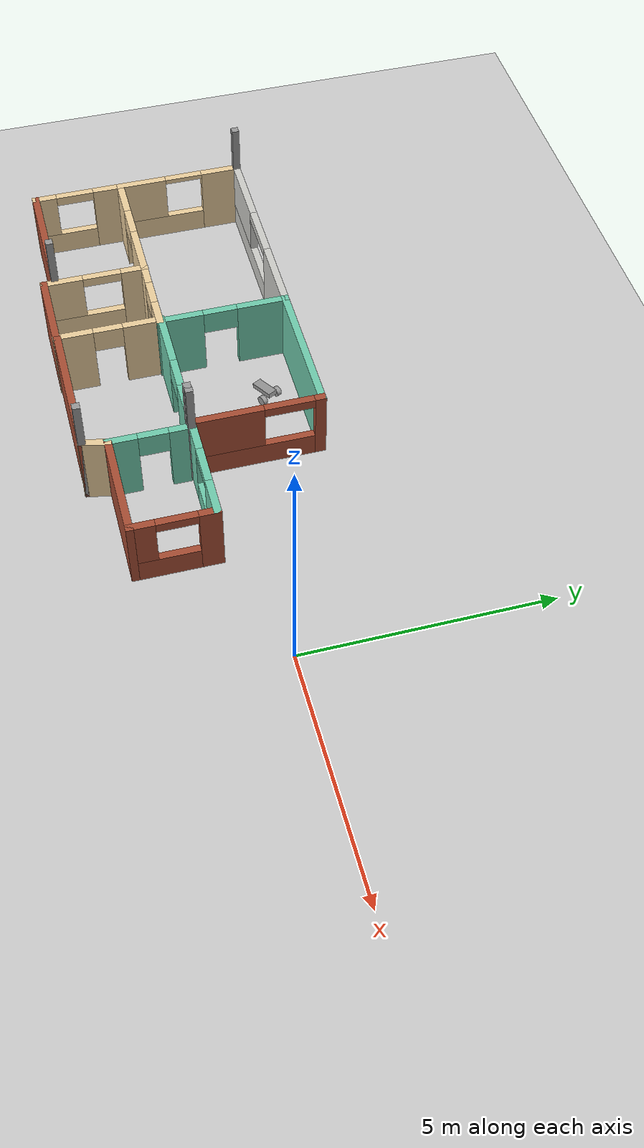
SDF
<sdf version="1.6">
 <world name="default">
  <model name="ground_plane">
   <static>1</static>
   <link name="link">
    <collision name="collision">
     <geometry><plane><normal>0 0 1</normal><size>100 100</size></plane></geometry>
     <surface><friction><ode><mu>100</mu><mu2>50</mu2></ode></friction></surface>
    </collision>
    <visual name="visual">
     <cast_shadows>0</cast_shadows>
     <geometry><plane><normal>0 0 1</normal><size>100 100</size></plane></geometry>
     <material>
      <script><uri>file://media/materials/scripts/gazebo.material</uri><name>Gazebo/Grey</name></script>
     </material>
    </visual>
   </link>
  </model>
  <model name="project1myapmt">
   <pose>-7.14968 -0.584035 0 0 -0 0</pose>
   <link name="Wall_0">
    <pose>-4.7145 1.0455 0 0 0 -1.5708</pose>
    <visual name="Wall_0_Visual_0">
     <pose>-0.936104 0 0.75 0 -0 0</pose>
     <geometry><box><size>0.877792 0.15 1.5</size></box></geometry>
     <material>
      <script><uri>file://media/materials/scripts/gazebo.material</uri><name>Gazebo/Grey</name></script>
      <ambient>0.921569 0.807843 0.615686 1</ambient>
     </material>
     <meta><layer>0</layer></meta>
    </visual>
    <collision name="Wall_0_Collision_0">
     <geometry><box><size>0.877792 0.15 1.5</size></box></geometry>
     <pose>-0.936104 0 0.75 0 -0 0</pose>
    </collision>
    <visual name="Wall_0_Visual_1">
     <pose>0.438896 0 0.25 0 -0 0</pose>
     <geometry><box><size>1.87221 0.15 0.5</size></box></geometry>
     <material>
      <script><uri>file://media/materials/scripts/gazebo.material</uri><name>Gazebo/Grey</name></script>
      <ambient>0.921569 0.807843 0.615686 1</ambient>
     </material>
     <meta><layer>0</layer></meta>
    </visual>
    <collision name="Wall_0_Collision_1">
     <geometry><box><size>1.87221 0.15 0.5</size></box></geometry>
     <pose>0.438896 0 0.25 0 -0 0</pose>
    </collision>
    <visual name="Wall_0_Visual_2">
     <pose>0.838896 0 1 0 -0 0</pose>
     <geometry><box><size>1.07221 0.15 1</size></box></geometry>
     <material>
      <script><uri>file://media/materials/scripts/gazebo.material</uri><name>Gazebo/Grey</name></script>
      <ambient>0.921569 0.807843 0.615686 1</ambient>
     </material>
     <meta><layer>0</layer></meta>
    </visual>
    <collision name="Wall_0_Collision_2">
     <geometry><box><size>1.07221 0.15 1</size></box></geometry>
     <pose>0.838896 0 1 0 -0 0</pose>
    </collision>
    <visual name="Wall_0_Visual_3">
     <pose>-0.097208 0 1.45 0 -0 0</pose>
     <geometry><box><size>0.8 0.15 0.1</size></box></geometry>
     <material>
      <script><uri>file://media/materials/scripts/gazebo.material</uri><name>Gazebo/Grey</name></script>
      <ambient>0.921569 0.807843 0.615686 1</ambient>
     </material>
     <meta><layer>0</layer></meta>
    </visual>
    <collision name="Wall_0_Collision_3">
     <geometry><box><size>0.8 0.15 0.1</size></box></geometry>
     <pose>-0.097208 0 1.45 0 -0 0</pose>
    </collision>
   </link>
   <link name="Wall_1">
    <pose>-2.5395 -0.2545 0 0 -0 0</pose>
    <visual name="Wall_1_Visual_0">
     <pose>-1.7861 0 0.75 0 -0 0</pose>
     <geometry><box><size>0.927792 0.15 1.5</size></box></geometry>
     <material>
      <script><uri>file://media/materials/scripts/gazebo.material</uri><name>Gazebo/Grey</name></script>
      <ambient>0.921569 0.807843 0.615686 1</ambient>
     </material>
     <meta><layer>0</layer></meta>
    </visual>
    <collision name="Wall_1_Collision_0">
     <geometry><box><size>0.927792 0.15 1.5</size></box></geometry>
     <pose>-1.7861 0 0.75 0 -0 0</pose>
    </collision>
    <visual name="Wall_1_Visual_1">
     <pose>0.197757 0 0.75 0 -0 0</pose>
     <geometry><box><size>1.63993 0.15 1.5</size></box></geometry>
     <material>
      <script><uri>file://media/materials/scripts/gazebo.material</uri><name>Gazebo/Grey</name></script>
      <ambient>0.921569 0.807843 0.615686 1</ambient>
     </material>
     <meta><layer>0</layer></meta>
    </visual>
    <collision name="Wall_1_Collision_1">
     <geometry><box><size>1.63993 0.15 1.5</size></box></geometry>
     <pose>0.197757 0 0.75 0 -0 0</pose>
    </collision>
    <visual name="Wall_1_Visual_2">
     <pose>1.93386 0 0.75 0 -0 0</pose>
     <geometry><box><size>0.632278 0.15 1.5</size></box></geometry>
     <material>
      <script><uri>file://media/materials/scripts/gazebo.material</uri><name>Gazebo/Grey</name></script>
      <ambient>0.921569 0.807843 0.615686 1</ambient>
     </material>
     <meta><layer>0</layer></meta>
    </visual>
    <collision name="Wall_1_Collision_2">
     <geometry><box><size>0.632278 0.15 1.5</size></box></geometry>
     <pose>1.93386 0 0.75 0 -0 0</pose>
    </collision>
    <visual name="Wall_1_Visual_3">
     <pose>-0.972208 0 1.25 0 -0 0</pose>
     <geometry><box><size>0.7 0.15 0.5</size></box></geometry>
     <material>
      <script><uri>file://media/materials/scripts/gazebo.material</uri><name>Gazebo/Grey</name></script>
      <ambient>0.921569 0.807843 0.615686 1</ambient>
     </material>
     <meta><layer>0</layer></meta>
    </visual>
    <collision name="Wall_1_Collision_3">
     <geometry><box><size>0.7 0.15 0.5</size></box></geometry>
     <pose>-0.972208 0 1.25 0 -0 0</pose>
    </collision>
    <visual name="Wall_1_Visual_4">
     <pose>1.31772 0 1.25 0 -0 0</pose>
     <geometry><box><size>0.6 0.15 0.5</size></box></geometry>
     <material>
      <script><uri>file://media/materials/scripts/gazebo.material</uri><name>Gazebo/Grey</name></script>
      <ambient>0.921569 0.807843 0.615686 1</ambient>
     </material>
     <meta><layer>0</layer></meta>
    </visual>
    <collision name="Wall_1_Collision_4">
     <geometry><box><size>0.6 0.15 0.5</size></box></geometry>
     <pose>1.31772 0 1.25 0 -0 0</pose>
    </collision>
   </link>
   <link name="Wall_10">
    <pose>4.7145 -1.034 0 0 0 -1.5708</pose>
    <visual name="Wall_10_Visual_0">
     <pose>-0.67359 0 0.75 0 -0 0</pose>
     <geometry><box><size>0.425819 0.15 1.5</size></box></geometry>
     <material>
      <script><uri>file://media/materials/scripts/gazebo.material</uri><name>Gazebo/Bricks</name></script>
      <ambient>0.435294 0.796078 0.67451 1</ambient>
     </material>
     <meta><layer>0</layer></meta>
    </visual>
    <collision name="Wall_10_Collision_0">
     <geometry><box><size>0.425819 0.15 1.5</size></box></geometry>
     <pose>-0.67359 0 0.75 0 -0 0</pose>
    </collision>
    <visual name="Wall_10_Visual_1">
     <pose>0.21291 0 0.25 0 -0 0</pose>
     <geometry><box><size>1.34718 0.15 0.5</size></box></geometry>
     <material>
      <script><uri>file://media/materials/scripts/gazebo.material</uri><name>Gazebo/Bricks</name></script>
      <ambient>0.435294 0.796078 0.67451 1</ambient>
     </material>
     <meta><layer>0</layer></meta>
    </visual>
    <collision name="Wall_10_Collision_1">
     <geometry><box><size>1.34718 0.15 0.5</size></box></geometry>
     <pose>0.21291 0 0.25 0 -0 0</pose>
    </collision>
    <visual name="Wall_10_Visual_2">
     <pose>0.61291 0 1 0 -0 0</pose>
     <geometry><box><size>0.547181 0.15 1</size></box></geometry>
     <material>
      <script><uri>file://media/materials/scripts/gazebo.material</uri><name>Gazebo/Bricks</name></script>
      <ambient>0.435294 0.796078 0.67451 1</ambient>
     </material>
     <meta><layer>0</layer></meta>
    </visual>
    <collision name="Wall_10_Collision_2">
     <geometry><box><size>0.547181 0.15 1</size></box></geometry>
     <pose>0.61291 0 1 0 -0 0</pose>
    </collision>
    <visual name="Wall_10_Visual_3">
     <pose>-0.060681 0 1.4 0 -0 0</pose>
     <geometry><box><size>0.8 0.15 0.2</size></box></geometry>
     <material>
      <script><uri>file://media/materials/scripts/gazebo.material</uri><name>Gazebo/Bricks</name></script>
      <ambient>0.435294 0.796078 0.67451 1</ambient>
     </material>
     <meta><layer>0</layer></meta>
    </visual>
    <collision name="Wall_10_Collision_3">
     <geometry><box><size>0.8 0.15 0.2</size></box></geometry>
     <pose>-0.060681 0 1.4 0 -0 0</pose>
    </collision>
   </link>
   <link name="Wall_11">
    <collision name="Wall_11_Collision">
     <geometry><box><size>2.273 0.15 1.5</size></box></geometry>
     <pose>0 0 0.75 0 -0 0</pose>
    </collision>
    <visual name="Wall_11_Visual">
     <pose>0 0 0.75 0 -0 0</pose>
     <geometry><box><size>2.273 0.15 1.5</size></box></geometry>
     <material>
      <script><uri>file://media/materials/scripts/gazebo.material</uri><name>Gazebo/Bricks</name></script>
      <ambient>0.435294 0.796078 0.67451 1</ambient>
     </material>
     <meta><layer>0</layer></meta>
    </visual>
    <pose>3.653 -1.8455 0 0 -0 3.14159</pose>
   </link>
   <link name="Wall_12">
    <pose>2.5915 -1.0455 0 0 -0 1.5708</pose>
    <visual name="Wall_12_Visual_0">
     <pose>-0.55759 0 0.75 0 -0 0</pose>
     <geometry><box><size>0.634821 0.15 1.5</size></box></geometry>
     <material>
      <script><uri>file://media/materials/scripts/gazebo.material</uri><name>Gazebo/Grey</name></script>
      <ambient>0.435294 0.796078 0.67451 1</ambient>
     </material>
     <meta><layer>0</layer></meta>
    </visual>
    <collision name="Wall_12_Collision_0">
     <geometry><box><size>0.634821 0.15 1.5</size></box></geometry>
     <pose>-0.55759 0 0.75 0 -0 0</pose>
    </collision>
    <visual name="Wall_12_Visual_1">
     <pose>0.61741 0 0.75 0 -0 0</pose>
     <geometry><box><size>0.515179 0.15 1.5</size></box></geometry>
     <material>
      <script><uri>file://media/materials/scripts/gazebo.material</uri><name>Gazebo/Grey</name></script>
      <ambient>0.435294 0.796078 0.67451 1</ambient>
     </material>
     <meta><layer>0</layer></meta>
    </visual>
    <collision name="Wall_12_Collision_1">
     <geometry><box><size>0.515179 0.15 1.5</size></box></geometry>
     <pose>0.61741 0 0.75 0 -0 0</pose>
    </collision>
    <visual name="Wall_12_Visual_2">
     <pose>0.059821 0 1.25 0 -0 0</pose>
     <geometry><box><size>0.6 0.15 0.5</size></box></geometry>
     <material>
      <script><uri>file://media/materials/scripts/gazebo.material</uri><name>Gazebo/Grey</name></script>
      <ambient>0.435294 0.796078 0.67451 1</ambient>
     </material>
     <meta><layer>0</layer></meta>
    </visual>
    <collision name="Wall_12_Collision_2">
     <geometry><box><size>0.6 0.15 0.5</size></box></geometry>
     <pose>0.059821 0 1.25 0 -0 0</pose>
    </collision>
   </link>
   <link name="Wall_13">
    <collision name="Wall_13_Collision">
     <geometry><box><size>0.15 0.15 2.5</size></box></geometry>
     <pose>0 0 1.25 0 -0 0</pose>
    </collision>
    <visual name="Wall_13_Visual">
     <pose>0 0 1.25 0 -0 0</pose>
     <geometry><box><size>0.15 0.15 2.5</size></box></geometry>
     <material>
      <script><uri>file://media/materials/scripts/gazebo.material</uri><name>Gazebo/Grey</name></script>
      <ambient>1 1 1 1</ambient>
     </material>
     <meta><layer>0</layer></meta>
    </visual>
    <pose>2.5915 -0.2455 0 0 -0 0</pose>
   </link>
   <link name="Wall_15">
    <collision name="Wall_15_Collision">
     <geometry><box><size>3 0.15 1.5</size></box></geometry>
     <pose>0 0 0.75 0 -0 0</pose>
    </collision>
    <visual name="Wall_15_Visual">
     <pose>0 0 0.75 0 -0 0</pose>
     <geometry><box><size>3 0.15 1.5</size></box></geometry>
     <material>
      <script><uri>file://media/materials/scripts/gazebo.material</uri><name>Gazebo/Grey</name></script>
      <ambient>0.435294 0.796078 0.67451 1</ambient>
     </material>
     <meta><layer>0</layer></meta>
    </visual>
    <pose>1.0605 2.3455 0 0 -0 0</pose>
   </link>
   <link name="Wall_16">
    <pose>2.4855 1.0455 0 0 0 -1.5708</pose>
    <visual name="Wall_16_Visual_0">
     <pose>-1.26367 0 0.75 0 -0 0</pose>
     <geometry><box><size>0.222657 0.15 1.5</size></box></geometry>
     <material>
      <script><uri>file://media/materials/scripts/gazebo.material</uri><name>Gazebo/Bricks</name></script>
      <ambient>0.435294 0.796078 0.67451 1</ambient>
     </material>
     <meta><layer>0</layer></meta>
    </visual>
    <collision name="Wall_16_Collision_0">
     <geometry><box><size>0.222657 0.15 1.5</size></box></geometry>
     <pose>-1.26367 0 0.75 0 -0 0</pose>
    </collision>
    <visual name="Wall_16_Visual_1">
     <pose>0.111329 0 0.25 0 -0 0</pose>
     <geometry><box><size>2.52734 0.15 0.5</size></box></geometry>
     <material>
      <script><uri>file://media/materials/scripts/gazebo.material</uri><name>Gazebo/Bricks</name></script>
      <ambient>0.435294 0.796078 0.67451 1</ambient>
     </material>
     <meta><layer>0</layer></meta>
    </visual>
    <collision name="Wall_16_Collision_1">
     <geometry><box><size>2.52734 0.15 0.5</size></box></geometry>
     <pose>0.111329 0 0.25 0 -0 0</pose>
    </collision>
    <visual name="Wall_16_Visual_2">
     <pose>0.611329 0 1 0 -0 0</pose>
     <geometry><box><size>1.52734 0.15 1</size></box></geometry>
     <material>
      <script><uri>file://media/materials/scripts/gazebo.material</uri><name>Gazebo/Bricks</name></script>
      <ambient>0.435294 0.796078 0.67451 1</ambient>
     </material>
     <meta><layer>0</layer></meta>
    </visual>
    <collision name="Wall_16_Collision_2">
     <geometry><box><size>1.52734 0.15 1</size></box></geometry>
     <pose>0.611329 0 1 0 -0 0</pose>
    </collision>
    <visual name="Wall_16_Visual_3">
     <pose>-0.652343 0 1.4 0 -0 0</pose>
     <geometry><box><size>1 0.15 0.2</size></box></geometry>
     <material>
      <script><uri>file://media/materials/scripts/gazebo.material</uri><name>Gazebo/Bricks</name></script>
      <ambient>0.435294 0.796078 0.67451 1</ambient>
     </material>
     <meta><layer>0</layer></meta>
    </visual>
    <collision name="Wall_16_Collision_3">
     <geometry><box><size>1 0.15 0.2</size></box></geometry>
     <pose>-0.652343 0 1.4 0 -0 0</pose>
    </collision>
   </link>
   <link name="Wall_17">
    <collision name="Wall_17_Collision">
     <geometry><box><size>0.15 0.15 2.5</size></box></geometry>
     <pose>0 0 1.25 0 -0 0</pose>
    </collision>
    <visual name="Wall_17_Visual">
     <pose>0 0 1.25 0 -0 0</pose>
     <geometry><box><size>0.15 0.15 2.5</size></box></geometry>
     <material>
      <script><uri>file://media/materials/scripts/gazebo.material</uri><name>Gazebo/Grey</name></script>
      <ambient>1 1 1 1</ambient>
     </material>
     <meta><layer>0</layer></meta>
    </visual>
    <pose>2.4855 -0.2545 0 0 -0 0</pose>
   </link>
   <link name="Wall_19">
    <collision name="Wall_19_Collision">
     <geometry><box><size>3 0.15 1.5</size></box></geometry>
     <pose>0 0 0.75 0 -0 0</pose>
    </collision>
    <visual name="Wall_19_Visual">
     <pose>0 0 0.75 0 -0 0</pose>
     <geometry><box><size>3 0.15 1.5</size></box></geometry>
     <material>
      <script><uri>file://media/materials/scripts/gazebo.material</uri><name>Gazebo/Bricks</name></script>
      <ambient>0.921569 0.807843 0.615686 1</ambient>
     </material>
     <meta><layer>0</layer></meta>
    </visual>
    <pose>1.0595 -2.3265 0 0 -0 0</pose>
   </link>
   <link name="Wall_2">
    <pose>-0.3645 1.0455 0 0 -0 1.5708</pose>
    <visual name="Wall_2_Visual_0">
     <pose>-0.894853 0 0.75 0 -0 0</pose>
     <geometry><box><size>0.960294 0.15 1.5</size></box></geometry>
     <material>
      <script><uri>file://media/materials/scripts/gazebo.material</uri><name>Gazebo/Grey</name></script>
      <ambient>0.435294 0.796078 0.67451 1</ambient>
     </material>
     <meta><layer>0</layer></meta>
    </visual>
    <collision name="Wall_2_Collision_0">
     <geometry><box><size>0.960294 0.15 1.5</size></box></geometry>
     <pose>-0.894853 0 0.75 0 -0 0</pose>
    </collision>
    <visual name="Wall_2_Visual_1">
     <pose>0.830147 0 0.75 0 -0 0</pose>
     <geometry><box><size>1.08971 0.15 1.5</size></box></geometry>
     <material>
      <script><uri>file://media/materials/scripts/gazebo.material</uri><name>Gazebo/Grey</name></script>
      <ambient>0.435294 0.796078 0.67451 1</ambient>
     </material>
     <meta><layer>0</layer></meta>
    </visual>
    <collision name="Wall_2_Collision_1">
     <geometry><box><size>1.08971 0.15 1.5</size></box></geometry>
     <pose>0.830147 0 0.75 0 -0 0</pose>
    </collision>
    <visual name="Wall_2_Visual_2">
     <pose>-0.064706 0 1.25 0 -0 0</pose>
     <geometry><box><size>0.7 0.15 0.5</size></box></geometry>
     <material>
      <script><uri>file://media/materials/scripts/gazebo.material</uri><name>Gazebo/Grey</name></script>
      <ambient>0.435294 0.796078 0.67451 1</ambient>
     </material>
     <meta><layer>0</layer></meta>
    </visual>
    <collision name="Wall_2_Collision_2">
     <geometry><box><size>0.7 0.15 0.5</size></box></geometry>
     <pose>-0.064706 0 1.25 0 -0 0</pose>
    </collision>
   </link>
   <link name="Wall_20">
    <collision name="Wall_20_Collision">
     <geometry><box><size>0.15 0.15 2.5</size></box></geometry>
     <pose>0 0 1.25 0 -0 0</pose>
    </collision>
    <visual name="Wall_20_Visual">
     <pose>0 0 1.25 0 -0 0</pose>
     <geometry><box><size>0.15 0.15 2.5</size></box></geometry>
     <material>
      <script><uri>file://media/materials/scripts/gazebo.material</uri><name>Gazebo/Grey</name></script>
      <ambient>1 1 1 1</ambient>
     </material>
     <meta><layer>0</layer></meta>
    </visual>
    <pose>2.4845 -2.3265 0 0 -0 0</pose>
   </link>
   <link name="Wall_22">
    <pose>-4.7145 -1.1795 0 0 0 -1.5708</pose>
    <visual name="Wall_22_Visual_0">
     <pose>-0.658359 0 0.75 0 -0 0</pose>
     <geometry><box><size>0.683281 0.15 1.5</size></box></geometry>
     <material>
      <script><uri>file://media/materials/scripts/gazebo.material</uri><name>Gazebo/Grey</name></script>
      <ambient>0.921569 0.807843 0.615686 1</ambient>
     </material>
     <meta><layer>0</layer></meta>
    </visual>
    <collision name="Wall_22_Collision_0">
     <geometry><box><size>0.683281 0.15 1.5</size></box></geometry>
     <pose>-0.658359 0 0.75 0 -0 0</pose>
    </collision>
    <visual name="Wall_22_Visual_1">
     <pose>0.341641 0 0.25 0 -0 0</pose>
     <geometry><box><size>1.31672 0.15 0.5</size></box></geometry>
     <material>
      <script><uri>file://media/materials/scripts/gazebo.material</uri><name>Gazebo/Grey</name></script>
      <ambient>0.921569 0.807843 0.615686 1</ambient>
     </material>
     <meta><layer>0</layer></meta>
    </visual>
    <collision name="Wall_22_Collision_1">
     <geometry><box><size>1.31672 0.15 0.5</size></box></geometry>
     <pose>0.341641 0 0.25 0 -0 0</pose>
    </collision>
    <visual name="Wall_22_Visual_2">
     <pose>0.741641 0 1 0 -0 0</pose>
     <geometry><box><size>0.516719 0.15 1</size></box></geometry>
     <material>
      <script><uri>file://media/materials/scripts/gazebo.material</uri><name>Gazebo/Grey</name></script>
      <ambient>0.921569 0.807843 0.615686 1</ambient>
     </material>
     <meta><layer>0</layer></meta>
    </visual>
    <collision name="Wall_22_Collision_2">
     <geometry><box><size>0.516719 0.15 1</size></box></geometry>
     <pose>0.741641 0 1 0 -0 0</pose>
    </collision>
    <visual name="Wall_22_Visual_3">
     <pose>0.083281 0 1.4 0 -0 0</pose>
     <geometry><box><size>0.8 0.15 0.2</size></box></geometry>
     <material>
      <script><uri>file://media/materials/scripts/gazebo.material</uri><name>Gazebo/Grey</name></script>
      <ambient>0.921569 0.807843 0.615686 1</ambient>
     </material>
     <meta><layer>0</layer></meta>
    </visual>
    <collision name="Wall_22_Collision_3">
     <geometry><box><size>0.8 0.15 0.2</size></box></geometry>
     <pose>0.083281 0 1.4 0 -0 0</pose>
    </collision>
   </link>
   <link name="Wall_23">
    <collision name="Wall_23_Collision">
     <geometry><box><size>2.75 0.15 1.5</size></box></geometry>
     <pose>0 0 0.75 0 -0 0</pose>
    </collision>
    <visual name="Wall_23_Visual">
     <pose>0 0 0.75 0 -0 0</pose>
     <geometry><box><size>2.75 0.15 1.5</size></box></geometry>
     <material>
      <script><uri>file://media/materials/scripts/gazebo.material</uri><name>Gazebo/Bricks</name></script>
      <ambient>0.921569 0.807843 0.615686 1</ambient>
     </material>
     <meta><layer>0</layer></meta>
    </visual>
    <pose>-3.4145 -2.1045 0 0 -0 0</pose>
   </link>
   <link name="Wall_24">
    <collision name="Wall_24_Collision">
     <geometry><box><size>0.15 0.15 2.5</size></box></geometry>
     <pose>0 0 1.25 0 -0 0</pose>
    </collision>
    <visual name="Wall_24_Visual">
     <pose>0 0 1.25 0 -0 0</pose>
     <geometry><box><size>0.15 0.15 2.5</size></box></geometry>
     <material>
      <script><uri>file://media/materials/scripts/gazebo.material</uri><name>Gazebo/Grey</name></script>
      <ambient>1 1 1 1</ambient>
     </material>
     <meta><layer>0</layer></meta>
    </visual>
    <pose>-2.1145 -2.1045 0 0 -0 0</pose>
   </link>
   <link name="Wall_26">
    <collision name="Wall_26_Collision">
     <geometry><box><size>0.643652 0.15 1.5</size></box></geometry>
     <pose>0 0 0.75 0 -0 0</pose>
    </collision>
    <visual name="Wall_26_Visual">
     <pose>0 0 0.75 0 -0 0</pose>
     <geometry><box><size>0.643652 0.15 1.5</size></box></geometry>
     <material>
      <script><uri>file://media/materials/scripts/gazebo.material</uri><name>Gazebo/Grey</name></script>
      <ambient>0.921569 0.807843 0.615686 1</ambient>
     </material>
     <meta><layer>0</layer></meta>
    </visual>
    <pose>2.538 -2.086 0 0 0 -1.78968</pose>
   </link>
   <link name="Wall_27">
    <collision name="Wall_27_Collision">
     <geometry><box><size>0.15 0.15 2.5</size></box></geometry>
     <pose>0 0 1.25 0 -0 0</pose>
    </collision>
    <visual name="Wall_27_Visual">
     <pose>0 0 1.25 0 -0 0</pose>
     <geometry><box><size>0.15 0.15 2.5</size></box></geometry>
     <material>
      <script><uri>file://media/materials/scripts/gazebo.material</uri><name>Gazebo/Grey</name></script>
      <ambient>1 1 1 1</ambient>
     </material>
     <meta><layer>0</layer></meta>
    </visual>
    <pose>2.4845 -2.3265 0 0 -0 0</pose>
   </link>
   <link name="Wall_3">
    <pose>-2.5395 2.3455 0 0 -0 3.14159</pose>
    <visual name="Wall_3_Visual_0">
     <pose>-1.4362 0 0.75 0 -0 0</pose>
     <geometry><box><size>1.62759 0.15 1.5</size></box></geometry>
     <material>
      <script><uri>file://media/materials/scripts/gazebo.material</uri><name>Gazebo/CeilingTiled</name></script>
      <ambient>0.921569 0.807843 0.615686 1</ambient>
     </material>
     <meta><layer>0</layer></meta>
    </visual>
    <collision name="Wall_3_Collision_0">
     <geometry><box><size>1.62759 0.15 1.5</size></box></geometry>
     <pose>-1.4362 0 0.75 0 -0 0</pose>
    </collision>
    <visual name="Wall_3_Visual_1">
     <pose>0.813796 0 0.25 0 -0 0</pose>
     <geometry><box><size>2.87241 0.15 0.5</size></box></geometry>
     <material>
      <script><uri>file://media/materials/scripts/gazebo.material</uri><name>Gazebo/CeilingTiled</name></script>
      <ambient>0.921569 0.807843 0.615686 1</ambient>
     </material>
     <meta><layer>0</layer></meta>
    </visual>
    <collision name="Wall_3_Collision_1">
     <geometry><box><size>2.87241 0.15 0.5</size></box></geometry>
     <pose>0.813796 0 0.25 0 -0 0</pose>
    </collision>
    <visual name="Wall_3_Visual_2">
     <pose>1.4138 0 1 0 -0 0</pose>
     <geometry><box><size>1.67241 0.15 1</size></box></geometry>
     <material>
      <script><uri>file://media/materials/scripts/gazebo.material</uri><name>Gazebo/CeilingTiled</name></script>
      <ambient>0.921569 0.807843 0.615686 1</ambient>
     </material>
     <meta><layer>0</layer></meta>
    </visual>
    <collision name="Wall_3_Collision_2">
     <geometry><box><size>1.67241 0.15 1</size></box></geometry>
     <pose>1.4138 0 1 0 -0 0</pose>
    </collision>
    <visual name="Wall_3_Visual_3">
     <pose>-0.022408 0 1.4 0 -0 0</pose>
     <geometry><box><size>1.2 0.15 0.2</size></box></geometry>
     <material>
      <script><uri>file://media/materials/scripts/gazebo.material</uri><name>Gazebo/CeilingTiled</name></script>
      <ambient>0.921569 0.807843 0.615686 1</ambient>
     </material>
     <meta><layer>0</layer></meta>
    </visual>
    <collision name="Wall_3_Collision_3">
     <geometry><box><size>1.2 0.15 0.2</size></box></geometry>
     <pose>-0.022408 0 1.4 0 -0 0</pose>
    </collision>
   </link>
   <link name="Wall_4">
    <collision name="Wall_4_Collision">
     <geometry><box><size>0.15 0.15 2.5</size></box></geometry>
     <pose>0 0 1.25 0 -0 0</pose>
    </collision>
    <visual name="Wall_4_Visual">
     <pose>0 0 1.25 0 -0 0</pose>
     <geometry><box><size>0.15 0.15 2.5</size></box></geometry>
     <material>
      <script><uri>file://media/materials/scripts/gazebo.material</uri><name>Gazebo/Grey</name></script>
      <ambient>1 1 1 1</ambient>
     </material>
     <meta><layer>0</layer></meta>
    </visual>
    <pose>-4.7145 2.3455 0 0 -0 0</pose>
   </link>
   <link name="Wall_6">
    <pose>-2.0085 -1.2955 0 0 0 -1.5708</pose>
    <visual name="Wall_6_Visual_0">
     <pose>-0.836453 0 0.75 0 -0 0</pose>
     <geometry><box><size>0.577094 0.15 1.5</size></box></geometry>
     <material>
      <script><uri>file://media/materials/scripts/gazebo.material</uri><name>Gazebo/Grey</name></script>
      <ambient>0.921569 0.807843 0.615686 1</ambient>
     </material>
     <meta><layer>0</layer></meta>
    </visual>
    <collision name="Wall_6_Collision_0">
     <geometry><box><size>0.577094 0.15 1.5</size></box></geometry>
     <pose>-0.836453 0 0.75 0 -0 0</pose>
    </collision>
    <visual name="Wall_6_Visual_1">
     <pose>0.288547 0 0.25 0 -0 0</pose>
     <geometry><box><size>1.67291 0.15 0.5</size></box></geometry>
     <material>
      <script><uri>file://media/materials/scripts/gazebo.material</uri><name>Gazebo/Grey</name></script>
      <ambient>0.921569 0.807843 0.615686 1</ambient>
     </material>
     <meta><layer>0</layer></meta>
    </visual>
    <collision name="Wall_6_Collision_1">
     <geometry><box><size>1.67291 0.15 0.5</size></box></geometry>
     <pose>0.288547 0 0.25 0 -0 0</pose>
    </collision>
    <visual name="Wall_6_Visual_2">
     <pose>0.688547 0 1 0 -0 0</pose>
     <geometry><box><size>0.872906 0.15 1</size></box></geometry>
     <material>
      <script><uri>file://media/materials/scripts/gazebo.material</uri><name>Gazebo/Grey</name></script>
      <ambient>0.921569 0.807843 0.615686 1</ambient>
     </material>
     <meta><layer>0</layer></meta>
    </visual>
    <collision name="Wall_6_Collision_2">
     <geometry><box><size>0.872906 0.15 1</size></box></geometry>
     <pose>0.688547 0 1 0 -0 0</pose>
    </collision>
    <visual name="Wall_6_Visual_3">
     <pose>-0.147906 0 1.4 0 -0 0</pose>
     <geometry><box><size>0.8 0.15 0.2</size></box></geometry>
     <material>
      <script><uri>file://media/materials/scripts/gazebo.material</uri><name>Gazebo/Grey</name></script>
      <ambient>0.921569 0.807843 0.615686 1</ambient>
     </material>
     <meta><layer>0</layer></meta>
    </visual>
    <collision name="Wall_6_Collision_3">
     <geometry><box><size>0.8 0.15 0.2</size></box></geometry>
     <pose>-0.147906 0 1.4 0 -0 0</pose>
    </collision>
   </link>
   <link name="Wall_7">
    <collision name="Wall_7_Collision">
     <geometry><box><size>1.75 0.15 1.5</size></box></geometry>
     <pose>0 0 0.75 0 -0 0</pose>
    </collision>
    <visual name="Wall_7_Visual">
     <pose>0 0 0.75 0 -0 0</pose>
     <geometry><box><size>1.75 0.15 1.5</size></box></geometry>
     <material>
      <script><uri>file://media/materials/scripts/gazebo.material</uri><name>Gazebo/Bricks</name></script>
      <ambient>0.921569 0.807843 0.615686 1</ambient>
     </material>
     <meta><layer>0</layer></meta>
    </visual>
    <pose>-1.2085 -2.3455 0 0 -0 0</pose>
   </link>
   <link name="Wall_8">
    <pose>-0.4085 -1.284 0 0 -0 1.5708</pose>
    <visual name="Wall_8_Visual_0">
     <pose>-0.730771 0 0.75 0 -0 0</pose>
     <geometry><box><size>0.811458 0.15 1.5</size></box></geometry>
     <material>
      <script><uri>file://media/materials/scripts/gazebo.material</uri><name>Gazebo/Grey</name></script>
      <ambient>0.921569 0.807843 0.615686 1</ambient>
     </material>
     <meta><layer>0</layer></meta>
    </visual>
    <collision name="Wall_8_Collision_0">
     <geometry><box><size>0.811458 0.15 1.5</size></box></geometry>
     <pose>-0.730771 0 0.75 0 -0 0</pose>
    </collision>
    <visual name="Wall_8_Visual_1">
     <pose>0.705729 0 0.75 0 -0 0</pose>
     <geometry><box><size>0.861542 0.15 1.5</size></box></geometry>
     <material>
      <script><uri>file://media/materials/scripts/gazebo.material</uri><name>Gazebo/Grey</name></script>
      <ambient>0.921569 0.807843 0.615686 1</ambient>
     </material>
     <meta><layer>0</layer></meta>
    </visual>
    <collision name="Wall_8_Collision_1">
     <geometry><box><size>0.861542 0.15 1.5</size></box></geometry>
     <pose>0.705729 0 0.75 0 -0 0</pose>
    </collision>
    <visual name="Wall_8_Visual_2">
     <pose>-0.025042 0 1.25 0 -0 0</pose>
     <geometry><box><size>0.6 0.15 0.5</size></box></geometry>
     <material>
      <script><uri>file://media/materials/scripts/gazebo.material</uri><name>Gazebo/Grey</name></script>
      <ambient>0.921569 0.807843 0.615686 1</ambient>
     </material>
     <meta><layer>0</layer></meta>
    </visual>
    <collision name="Wall_8_Collision_2">
     <geometry><box><size>0.6 0.15 0.5</size></box></geometry>
     <pose>-0.025042 0 1.25 0 -0 0</pose>
    </collision>
   </link>
   <link name="Wall_9">
    <pose>2.153 -0.2225 0 0 -0 0</pose>
    <visual name="Wall_9_Visual_0">
     <pose>-1.99763 0 0.75 0 -0 0</pose>
     <geometry><box><size>1.27773 0.15 1.5</size></box></geometry>
     <material>
      <script><uri>file://media/materials/scripts/gazebo.material</uri><name>Gazebo/Grey</name></script>
      <ambient>0.435294 0.796078 0.67451 1</ambient>
     </material>
     <meta><layer>0</layer></meta>
    </visual>
    <collision name="Wall_9_Collision_0">
     <geometry><box><size>1.27773 0.15 1.5</size></box></geometry>
     <pose>-1.99763 0 0.75 0 -0 0</pose>
    </collision>
    <visual name="Wall_9_Visual_1">
     <pose>0.186067 0 0.75 0 -0 0</pose>
     <geometry><box><size>1.68967 0.15 1.5</size></box></geometry>
     <material>
      <script><uri>file://media/materials/scripts/gazebo.material</uri><name>Gazebo/Grey</name></script>
      <ambient>0.435294 0.796078 0.67451 1</ambient>
     </material>
     <meta><layer>0</layer></meta>
    </visual>
    <collision name="Wall_9_Collision_1">
     <geometry><box><size>1.68967 0.15 1.5</size></box></geometry>
     <pose>0.186067 0 0.75 0 -0 0</pose>
    </collision>
    <visual name="Wall_9_Visual_2">
     <pose>1.8337 0 0.25 0 -0 0</pose>
     <geometry><box><size>1.6056 0.15 0.5</size></box></geometry>
     <material>
      <script><uri>file://media/materials/scripts/gazebo.material</uri><name>Gazebo/Grey</name></script>
      <ambient>0.435294 0.796078 0.67451 1</ambient>
     </material>
     <meta><layer>0</layer></meta>
    </visual>
    <collision name="Wall_9_Collision_2">
     <geometry><box><size>1.6056 0.15 0.5</size></box></geometry>
     <pose>1.8337 0 0.25 0 -0 0</pose>
    </collision>
    <visual name="Wall_9_Visual_3">
     <pose>2.2337 0 1 0 -0 0</pose>
     <geometry><box><size>0.805599 0.15 1</size></box></geometry>
     <material>
      <script><uri>file://media/materials/scripts/gazebo.material</uri><name>Gazebo/Grey</name></script>
      <ambient>0.435294 0.796078 0.67451 1</ambient>
     </material>
     <meta><layer>0</layer></meta>
    </visual>
    <collision name="Wall_9_Collision_3">
     <geometry><box><size>0.805599 0.15 1</size></box></geometry>
     <pose>2.2337 0 1 0 -0 0</pose>
    </collision>
    <visual name="Wall_9_Visual_4">
     <pose>-1.00877 0 1.25 0 -0 0</pose>
     <geometry><box><size>0.7 0.15 0.5</size></box></geometry>
     <material>
      <script><uri>file://media/materials/scripts/gazebo.material</uri><name>Gazebo/Grey</name></script>
      <ambient>0.435294 0.796078 0.67451 1</ambient>
     </material>
     <meta><layer>0</layer></meta>
    </visual>
    <collision name="Wall_9_Collision_4">
     <geometry><box><size>0.7 0.15 0.5</size></box></geometry>
     <pose>-1.00877 0 1.25 0 -0 0</pose>
    </collision>
    <visual name="Wall_9_Visual_5">
     <pose>1.4309 0 1.4 0 -0 0</pose>
     <geometry><box><size>0.8 0.15 0.2</size></box></geometry>
     <material>
      <script><uri>file://media/materials/scripts/gazebo.material</uri><name>Gazebo/Grey</name></script>
      <ambient>0.435294 0.796078 0.67451 1</ambient>
     </material>
     <meta><layer>0</layer></meta>
    </visual>
    <collision name="Wall_9_Collision_5">
     <geometry><box><size>0.8 0.15 0.2</size></box></geometry>
     <pose>1.4309 0 1.4 0 -0 0</pose>
    </collision>
   </link>
   <static>1</static>
  </model>
  <model name="project3wheelrobot">
   <link name="link_0">
    <pose>0.004117 -0.024254 0.075 0 -0 0</pose>
    <inertial>
     <mass>1</mass>
     <inertia>
      <ixx>0.166667</ixx>
      <ixy>0</ixy>
      <ixz>0</ixz>
      <iyy>0.166667</iyy>
      <iyz>0</iyz>
      <izz>0.166667</izz>
     </inertia>
    </inertial>
    <visual name="visual">
     <geometry><box><size>0.2 0.5 0.1</size></box></geometry>
     <material>
      <lighting>1</lighting>
      <script><uri>file://media/materials/scripts/gazebo.material</uri><name>Gazebo/Grey</name></script>
      <shader type="pixel"><normal_map>__default__</normal_map></shader>
      <ambient>0.3 0.3 0.3 1</ambient>
      <diffuse>0.7 0.7 0.7 1</diffuse>
      <specular>0.01 0.01 0.01 1</specular>
      <emissive>0 0 0 1</emissive>
     </material>
    </visual>
    <collision name="collision">
     <geometry><box><size>0.2 0.5 0.1</size></box></geometry>
     <surface>
      <friction>
       <ode><mu>1</mu><mu2>1</mu2><fdir1>0 0 0</fdir1><slip1>0</slip1><slip2>0</slip2></ode>
       <torsional>
        <coefficient>1</coefficient>
        <patch_radius>0</patch_radius>
        <surface_radius>0</surface_radius>
        <use_patch_radius>1</use_patch_radius>
        <ode><slip>0</slip></ode>
       </torsional>
      </friction>
      <bounce><restitution_coefficient>0</restitution_coefficient><threshold>1e+06</threshold></bounce>
      <contact>
       <collide_without_contact>0</collide_without_contact>
       <collide_without_contact_bitmask>1</collide_without_contact_bitmask>
       <collide_bitmask>1</collide_bitmask>
       <ode>
        <soft_cfm>0</soft_cfm>
        <soft_erp>0.2</soft_erp>
        <kp>1e+13</kp>
        <kd>1</kd>
        <max_vel>0.01</max_vel>
        <min_depth>0</min_depth>
       </ode>
       <bullet>
        <split_impulse>1</split_impulse>
        <split_impulse_penetration_threshold>-0.01</split_impulse_penetration_threshold>
        <soft_cfm>0</soft_cfm>
        <soft_erp>0.2</soft_erp>
        <kp>1e+13</kp>
        <kd>1</kd>
       </bullet>
      </contact>
     </surface>
    </collision>
   </link>
   <link name="link_1">
    <pose>-0.17975 0.12395 -0.025 1.57079 9.6e-05 1.54665</pose>
    <inertial>
     <mass>1</mass>
     <inertia><ixx>0.145833</ixx><ixy>0</ixy><ixz>0</ixz><iyy>0.145833</iyy><iyz>0</iyz><izz>0.125</izz></inertia>
    </inertial>
    <visual name="visual">
     <geometry><cylinder><radius>0.1</radius><length>0.1</length></cylinder></geometry>
     <material>
      <lighting>1</lighting>
      <script><uri>file://media/materials/scripts/gazebo.material</uri><name>Gazebo/Grey</name></script>
      <shader type="pixel"><normal_map>__default__</normal_map></shader>
      <ambient>0.3 0.3 0.3 1</ambient>
      <diffuse>0.7 0.7 0.7 1</diffuse>
      <specular>0.01 0.01 0.01 1</specular>
      <emissive>0 0 0 1</emissive>
     </material>
    </visual>
    <collision name="collision">
     <geometry><cylinder><radius>0.1</radius><length>0.1</length></cylinder></geometry>
     <surface>
      <friction>
       <ode><mu>1</mu><mu2>1</mu2><fdir1>0 0 0</fdir1><slip1>0</slip1><slip2>0</slip2></ode>
       <torsional>
        <coefficient>1</coefficient>
        <patch_radius>0</patch_radius>
        <surface_radius>0</surface_radius>
        <use_patch_radius>1</use_patch_radius>
        <ode><slip>0</slip></ode>
       </torsional>
      </friction>
      <bounce><restitution_coefficient>0</restitution_coefficient><threshold>1e+06</threshold></bounce>
      <contact>
       <collide_without_contact>0</collide_without_contact>
       <collide_without_contact_bitmask>1</collide_without_contact_bitmask>
       <collide_bitmask>1</collide_bitmask>
       <ode>
        <soft_cfm>0</soft_cfm>
        <soft_erp>0.2</soft_erp>
        <kp>1e+13</kp>
        <kd>1</kd>
        <max_vel>0.01</max_vel>
        <min_depth>0</min_depth>
       </ode>
       <bullet>
        <split_impulse>1</split_impulse>
        <split_impulse_penetration_threshold>-0.01</split_impulse_penetration_threshold>
        <soft_cfm>0</soft_cfm>
        <soft_erp>0.2</soft_erp>
        <kp>1e+13</kp>
        <kd>1</kd>
       </bullet>
      </contact>
     </surface>
    </collision>
   </link>
   <link name="link_1_clone">
    <pose>0.196517 0.124558 -0.025 1.57079 9.6e-05 1.54665</pose>
    <inertial>
     <mass>1</mass>
     <inertia><ixx>0.145833</ixx><ixy>0</ixy><ixz>0</ixz><iyy>0.145833</iyy><iyz>0</iyz><izz>0.125</izz></inertia>
    </inertial>
    <visual name="visual">
     <geometry><cylinder><radius>0.1</radius><length>0.1</length></cylinder></geometry>
     <material>
      <lighting>1</lighting>
      <script><uri>file://media/materials/scripts/gazebo.material</uri><name>Gazebo/Grey</name></script>
      <shader type="pixel"><normal_map>__default__</normal_map></shader>
      <ambient>0.3 0.3 0.3 1</ambient>
      <diffuse>0.7 0.7 0.7 1</diffuse>
      <specular>0.01 0.01 0.01 1</specular>
      <emissive>0 0 0 1</emissive>
     </material>
    </visual>
    <collision name="collision">
     <geometry><cylinder><radius>0.1</radius><length>0.1</length></cylinder></geometry>
     <surface>
      <friction>
       <ode><mu>1</mu><mu2>1</mu2><fdir1>0 0 0</fdir1><slip1>0</slip1><slip2>0</slip2></ode>
       <torsional>
        <coefficient>1</coefficient>
        <patch_radius>0</patch_radius>
        <surface_radius>0</surface_radius>
        <use_patch_radius>1</use_patch_radius>
        <ode><slip>0</slip></ode>
       </torsional>
      </friction>
      <bounce><restitution_coefficient>0</restitution_coefficient><threshold>1e+06</threshold></bounce>
      <contact>
       <collide_without_contact>0</collide_without_contact>
       <collide_without_contact_bitmask>1</collide_without_contact_bitmask>
       <collide_bitmask>1</collide_bitmask>
       <ode>
        <soft_cfm>0</soft_cfm>
        <soft_erp>0.2</soft_erp>
        <kp>1e+13</kp>
        <kd>1</kd>
        <max_vel>0.01</max_vel>
        <min_depth>0</min_depth>
       </ode>
       <bullet>
        <split_impulse>1</split_impulse>
        <split_impulse_penetration_threshold>-0.01</split_impulse_penetration_threshold>
        <soft_cfm>0</soft_cfm>
        <soft_erp>0.2</soft_erp>
        <kp>1e+13</kp>
        <kd>1</kd>
       </bullet>
      </contact>
     </surface>
    </collision>
   </link>
   <link name="link_2">
    <pose>-0.020883 -0.224254 -0.025 0 -0 0</pose>
    <inertial>
     <mass>1</mass>
     <inertia><ixx>0.1</ixx><ixy>0</ixy><ixz>0</ixz><iyy>0.1</iyy><iyz>0</iyz><izz>0.1</izz></inertia>
    </inertial>
    <visual name="visual">
     <geometry><sphere><radius>0.06</radius></sphere></geometry>
     <material>
      <lighting>1</lighting>
      <script><uri>file://media/materials/scripts/gazebo.material</uri><name>Gazebo/Grey</name></script>
      <shader type="pixel"><normal_map>__default__</normal_map></shader>
      <ambient>0.3 0.3 0.3 1</ambient>
      <diffuse>0.7 0.7 0.7 1</diffuse>
      <specular>0.01 0.01 0.01 1</specular>
      <emissive>0 0 0 1</emissive>
     </material>
    </visual>
    <collision name="collision">
     <geometry><sphere><radius>0.06</radius></sphere></geometry>
     <surface>
      <friction>
       <ode><mu>1</mu><mu2>1</mu2><fdir1>0 0 0</fdir1><slip1>0</slip1><slip2>0</slip2></ode>
       <torsional>
        <coefficient>1</coefficient>
        <patch_radius>0</patch_radius>
        <surface_radius>0</surface_radius>
        <use_patch_radius>1</use_patch_radius>
        <ode><slip>0</slip></ode>
       </torsional>
      </friction>
      <bounce><restitution_coefficient>0</restitution_coefficient><threshold>1e+06</threshold></bounce>
      <contact>
       <collide_without_contact>0</collide_without_contact>
       <collide_without_contact_bitmask>1</collide_without_contact_bitmask>
       <collide_bitmask>1</collide_bitmask>
       <ode>
        <soft_cfm>0</soft_cfm>
        <soft_erp>0.2</soft_erp>
        <kp>1e+13</kp>
        <kd>1</kd>
        <max_vel>0.01</max_vel>
        <min_depth>0</min_depth>
       </ode>
       <bullet>
        <split_impulse>1</split_impulse>
        <split_impulse_penetration_threshold>-0.01</split_impulse_penetration_threshold>
        <soft_cfm>0</soft_cfm>
        <soft_erp>0.2</soft_erp>
        <kp>1e+13</kp>
        <kd>1</kd>
       </bullet>
      </contact>
     </surface>
    </collision>
   </link>
   <joint name="link_0_JOINT_0" type="revolute">
    <parent>link_0</parent>
    <child>link_1</child>
    <axis>
     <xyz>0 0 1</xyz>
     <use_parent_model_frame>0</use_parent_model_frame>
     <limit>
      <lower>-1.79769e+308</lower>
      <upper>1.79769e+308</upper>
      <effort>-1</effort>
      <velocity>-1</velocity>
     </limit>
     <dynamics>
      <spring_reference>0</spring_reference>
      <spring_stiffness>0</spring_stiffness>
      <damping>0</damping>
     </dynamics>
    </axis>
    <physics>
     <ode><limit><cfm>0</cfm><erp>0.2</erp></limit><suspension><cfm>0</cfm><erp>0.2</erp></suspension></ode>
    </physics>
   </joint>
   <joint name="link_0_JOINT_1" type="revolute">
    <parent>link_0</parent>
    <child>link_1_clone</child>
    <axis>
     <xyz>0 0 1</xyz>
     <use_parent_model_frame>0</use_parent_model_frame>
     <limit>
      <lower>-1.79769e+308</lower>
      <upper>1.79769e+308</upper>
      <effort>-1</effort>
      <velocity>-1</velocity>
     </limit>
     <dynamics>
      <spring_reference>0</spring_reference>
      <spring_stiffness>0</spring_stiffness>
      <damping>0</damping>
     </dynamics>
    </axis>
    <physics>
     <ode><limit><cfm>0</cfm><erp>0.2</erp></limit><suspension><cfm>0</cfm><erp>0.2</erp></suspension></ode>
    </physics>
   </joint>
   <joint name="link_0_JOINT_2" type="revolute">
    <parent>link_0</parent>
    <child>link_1_clone</child>
    <axis>
     <xyz>0 0 1</xyz>
     <use_parent_model_frame>0</use_parent_model_frame>
     <limit>
      <lower>-1.79769e+308</lower>
      <upper>1.79769e+308</upper>
      <effort>-1</effort>
      <velocity>-1</velocity>
     </limit>
     <dynamics>
      <spring_reference>0</spring_reference>
      <spring_stiffness>0</spring_stiffness>
      <damping>0</damping>
     </dynamics>
    </axis>
    <physics>
     <ode><limit><cfm>0</cfm><erp>0.2</erp></limit><suspension><cfm>0</cfm><erp>0.2</erp></suspension></ode>
    </physics>
   </joint>
   <joint name="link_0_JOINT_3" type="revolute">
    <parent>link_0</parent>
    <child>link_1</child>
    <axis>
     <xyz>0 0 1</xyz>
     <use_parent_model_frame>0</use_parent_model_frame>
     <limit>
      <lower>-1.79769e+308</lower>
      <upper>1.79769e+308</upper>
      <effort>-1</effort>
      <velocity>-1</velocity>
     </limit>
     <dynamics>
      <spring_reference>0</spring_reference>
      <spring_stiffness>0</spring_stiffness>
      <damping>0</damping>
     </dynamics>
    </axis>
    <physics>
     <ode><limit><cfm>0</cfm><erp>0.2</erp></limit><suspension><cfm>0</cfm><erp>0.2</erp></suspension></ode>
    </physics>
   </joint>
   <joint name="link_0_JOINT_4" type="revolute">
    <parent>link_0</parent>
    <child>link_1_clone</child>
    <axis>
     <xyz>1 0 0</xyz>
     <use_parent_model_frame>0</use_parent_model_frame>
     <limit>
      <lower>-1.79769e+308</lower>
      <upper>1.79769e+308</upper>
      <effort>-1</effort>
      <velocity>-1</velocity>
     </limit>
     <dynamics>
      <spring_reference>0</spring_reference>
      <spring_stiffness>0</spring_stiffness>
      <damping>0</damping>
     </dynamics>
    </axis>
    <physics>
     <ode><limit><cfm>0</cfm><erp>0.2</erp></limit><suspension><cfm>0</cfm><erp>0.2</erp></suspension></ode>
    </physics>
   </joint>
   <joint name="link_0_JOINT_5" type="revolute">
    <parent>link_0</parent>
    <child>link_1_clone</child>
    <axis>
     <xyz>0 0 1</xyz>
     <use_parent_model_frame>0</use_parent_model_frame>
     <limit>
      <lower>-1.79769e+308</lower>
      <upper>1.79769e+308</upper>
      <effort>-1</effort>
      <velocity>-1</velocity>
     </limit>
     <dynamics>
      <spring_reference>0</spring_reference>
      <spring_stiffness>0</spring_stiffness>
      <damping>0</damping>
     </dynamics>
    </axis>
    <physics>
     <ode><limit><cfm>0</cfm><erp>0.2</erp></limit><suspension><cfm>0</cfm><erp>0.2</erp></suspension></ode>
    </physics>
   </joint>
   <joint name="link_0_JOINT_7" type="ball">
    <parent>link_0</parent>
    <child>link_2</child>
    <physics>
     <ode><limit><cfm>0</cfm><erp>0.2</erp></limit><suspension><cfm>0</cfm><erp>0.2</erp></suspension></ode>
    </physics>
   </joint>
   <static>0</static>
   <pose>-6.34061 1.04643 0.110666 0.115475 0.00019 -1.08584</pose>
  </model>
 </world>
</sdf>
